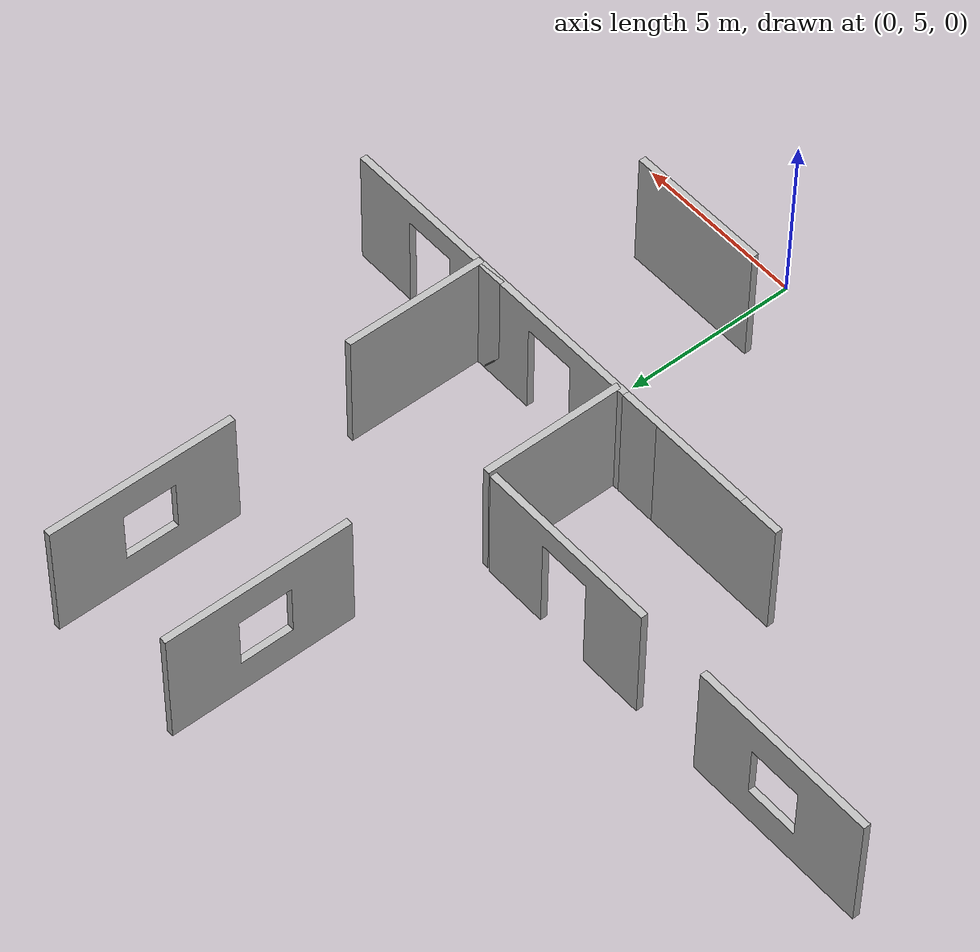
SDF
<sdf version="1.5">
 <world name="default">
  <include><uri>model://sun</uri></include>
  <include>
   <name>wall_w_win_1</name>
   <uri>model://house_scene_1_wall_w_window</uri>
   <static>true</static>
   <pose>-2.243223 13.283944 0 0 0 1.567493</pose>
  </include>
  <include>
   <name>wall_w_win_2</name>
   <uri>model://house_scene_1_wall_w_window</uri>
   <static>true</static>
   <pose>0.083877 12.639949 0 0 0 0</pose>
  </include>
  <include>
   <name>wall_w_win_3</name>
   <uri>model://house_scene_1_wall_w_window</uri>
   <static>true</static>
   <pose>-3.983081 12.464193 0 0 0 0</pose>
  </include>
  <include>
   <name>wall_w_door_1</name>
   <uri>model://house_scene_1_wall_w_door</uri>
   <static>true</static>
   <pose>-5.389788 12.134013 0 0 0 0</pose>
  </include>
  <include>
   <name>wall_w_door_2</name>
   <uri>model://house_scene_1_wall_w_door</uri>
   <static>true</static>
   <pose>-0.273567 8.225039 0 0 0 0</pose>
  </include>
  <include>
   <name>wall_w_door_3</name>
   <uri>model://house_scene_1_wall_w_door</uri>
   <static>true</static>
   <pose>4.144635 8.225039 0 0 0 0</pose>
  </include>
  <include>
   <name>wall_1</name>
   <uri>model://house_scene_1_wall</uri>
   <static>true</static>
   <pose>0.995554 7.159050 0 0 0 0</pose>
  </include>
  <include>
   <name>wall_2</name>
   <uri>model://house_scene_1_wall</uri>
   <static>true</static>
   <pose>-1.921930 14.302383 0 0 0 -1.570796</pose>
  </include>
  <include>
   <name>wall_3</name>
   <uri>model://house_scene_1_wall</uri>
   <static>true</static>
   <pose>-5.499550 12.299837 0 0 0 0</pose>
  </include>
  <include>
   <name>wall_4</name>
   <uri>model://house_scene_1_wall</uri>
   <static>true</static>
   <pose>-4.311431 12.298409 0 0 0 0</pose>
  </include>
  <include>
   <name>wall_5</name>
   <uri>model://house_scene_1_wall</uri>
   <static>true</static>
   <pose>3.070581 14.176468 0 0 0 1.570840</pose>
  </include>
 </world>
</sdf>

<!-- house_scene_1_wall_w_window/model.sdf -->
<sdf version="1.5">
    <model name="house3">
        <static>true</static>
        <link name="link">
            <collision name="collision1">
                <pose>0 12.5 0 0 0 0</pose>
                <geometry>
                    <mesh>
                        <uri>model://house_scene_1_wall_w_window/meshes/scene_1_wall_w_window.dae</uri>
                    </mesh>
                </geometry>
            </collision>
            <visual name="visual_walls3">
              <pose>0 12.5 0 0 0 0</pose>
              <geometry>
              <mesh>
                 <uri>model://house_scene_1_wall_w_window/meshes/scene_1_wall_w_window.dae</uri>
              </mesh>
              </geometry>
              <material>
                  <script>
                      <uri>model://house_scene_1_wall_w_window/materials/scripts</uri>
                      <uri>model://house_scene_1_wall_w_window/materials/textures</uri>
                      <name>houseMat/Diffuse</name>
                  </script>
              </material>
             </visual>

        </link>
    </model>
</sdf>

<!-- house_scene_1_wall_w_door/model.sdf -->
<sdf version="1.5">
    <model name="house2">
        <static>true</static>
        <link name="link">
            <collision name="collision1">
                <pose>0 0 0 0 0 0</pose>
                <geometry>
                    <mesh>
                        <uri>model://house_scene_1_wall_w_door/meshes/scene_1_wall_w_door.dae</uri>
                    </mesh>
                </geometry>
            </collision>
            <visual name="visual_walls2">
              <pose>0 0 0 0 0 0</pose>
              <geometry>
              <mesh>
                 <uri>model://house_scene_1_wall_w_door/meshes/scene_1_wall_w_door.dae</uri>
              </mesh>
              </geometry>
              <material>
                  <script>
                      <uri>model://house_scene_1_wall_w_door/materials/scripts</uri>
                      <uri>model://house_scene_1_wall_w_door/materials/textures</uri>
                      <name>houseMat/Diffuse</name>
                  </script>
              </material>
             </visual>

        </link>
    </model>
</sdf>

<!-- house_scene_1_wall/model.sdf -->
<sdf version="1.5">
    <model name="house1">
        <static>true</static>
        <link name="link">
            <collision name="collision1">
                <pose>0 0 0 0 0 0</pose>
                <geometry>
                    <mesh>
                        <uri>model://house_scene_1_wall/meshes/scene_1_wall.dae</uri>
                    </mesh>
                </geometry>
            </collision>
            <visual name="visual_walls1">
              <pose>0 0 0 0 0 0</pose>
              <geometry>
              <mesh>
                 <uri>model://house_scene_1_wall/meshes/scene_1_wall.dae</uri>
              </mesh>
              </geometry>
              <material>
                  <script>
                      <uri>model://house_scene_1_wall/materials/scripts</uri>
                      <uri>model://house_scene_1_wall/materials/textures</uri>
                      <name>houseMat/Diffuse</name>
                  </script>
              </material>
             </visual>

        </link>
    </model>
</sdf>
